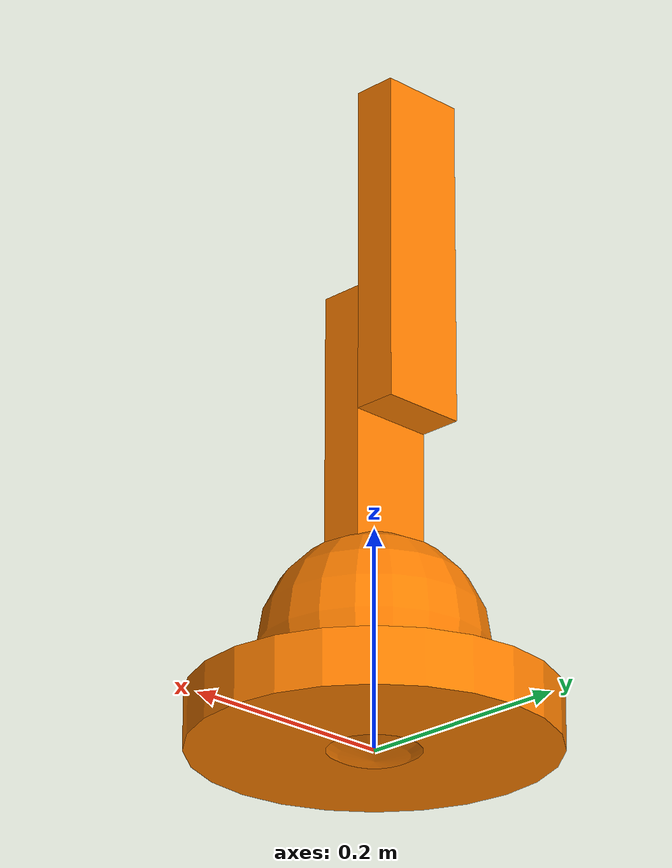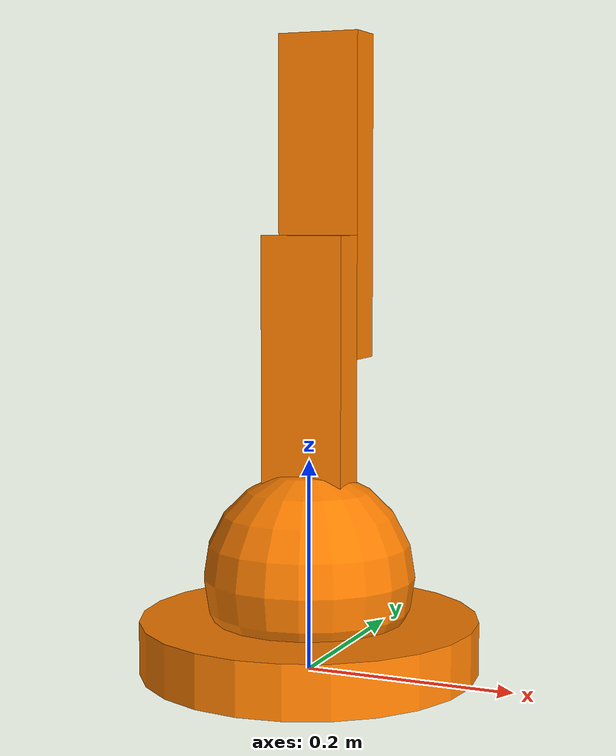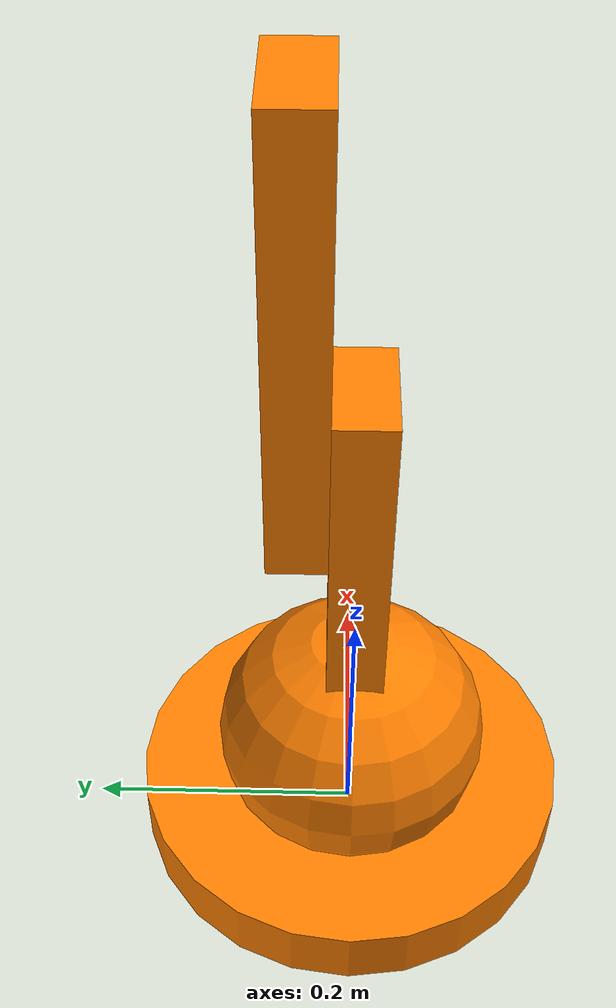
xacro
<?xml version ="1.0"?>

<robot name="agv_mini_manipulator" xmlns:xacro="http://www.ros.org/wiki/xacro">

    <xacro:include filename="$(find agv_mini_manipulator_description)/urdf/common_properties.xacro"/>
    <xacro:include filename="$(find agv_mini_manipulator_description)/urdf/common_hardware.xacro"/>

    <xacro:include filename="$(find agv_mini_manipulator_description)/urdf/manipulator/arm.xacro"/>
    <xacro:include filename="$(find agv_mini_manipulator_description)/urdf/manipulator/arm_gazebo.xacro"/>

</robot>

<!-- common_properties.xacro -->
<robot xmlns:xacro="http://www.ros.org/wiki/xacro">
    <!-- Materials -->
    <material name="blue">
        <color rgba="0 0 1 1"/>
    </material>

    <material name="black">
        <color rgba="0 0 0 1"/>
    </material>

    <material name="gray">
        <color rgba="0.5 0.5 0.5 1"/>
    </material>

    <material name="orange">
        <color rgba="1 0.5 0 1"/>
    </material>

    <!-- Common Xacros -->
    <xacro:macro name="box_inertia" params="m o_xyz o_rpy length width height">
            <inertial>
                <mass value="${m}"/>
                <origin xyz="${o_xyz}" rpy="${o_rpy}"/>
                <inertia ixx="${m /12 * (width**2 + height**2)}" ixy="0" ixz="0"
                         iyy="${m /12 * (length**2 + height**2)}" iyz="0"
                         izz="${m /12 * (length**2 + width**2)}"/>
            </inertial>
    </xacro:macro>

    <xacro:macro name="box_link" params="link_name m o_xyz o_rpy length width height material_name">
        <link name="${link_name}">
            <visual>
                <geometry>
                <box size="${length} ${width} ${height}"/>
                </geometry>
                <origin xyz="${o_xyz}" rpy="${o_rpy}"/>
                <material name="${material_name}"/>
            </visual>

            <collision>
                <geometry>
                <box size="${length} ${width} ${height}"/>
                </geometry>
                <origin xyz="${o_xyz}" rpy="${o_rpy}"/>
            </collision>

            <xacro:box_inertia m="${m}" o_xyz="${o_xyz}" o_rpy="${o_rpy}"
            length="${length}" width="${width}" height="${height}"/>
        </link>
    </xacro:macro>

    <xacro:macro name="cylinder_inertia" params="m radius length o_xyz o_rpy">
        <inertial>
            <mass value="${m}"/>
            <origin xyz="${o_xyz}" rpy="${o_rpy}"/>
            <inertia ixx="${m / 12 * (3*radius**2 + length**2)}" ixy="0" ixz="0"
                        iyy="${m / 12 * (3*radius**2 + length**2)}" iyz="0"
                        izz="${m / 2 * radius**2}"/>
        </inertial>
    </xacro:macro>

    <xacro:macro name="cylinder" params="link_name m o_xyz o_rpy radius length material_name">
        <link name="${link_name}">
            <visual>
                <geometry>
                    <cylinder radius="${radius}" length="${length}"/>
                </geometry>
                <origin xyz="${o_xyz}" rpy="${o_rpy}"/>
                <material name="${material_name}"/>
            </visual>

            <collision>
                <geometry>
                    <cylinder radius="${radius}" length="${length}"/>
                </geometry>
                <origin xyz="${o_xyz}" rpy="${o_rpy}"/>
            </collision>

            <xacro:cylinder_inertia
            m="${m}" radius="${radius}" length="${length}"
            o_xyz="${o_xyz}" o_rpy="${o_rpy}"/>
        </link>
    </xacro:macro>

    <xacro:macro name="sphere_inertia" params="m radius o_xyz o_rpy">
        <inertial>
            <mass value="${m}"/>
            <origin xyz="${o_xyz}" rpy="${o_rpy}"/>
            <inertia ixx="${2/5 * m * (radius)**2}" ixy="0" ixz="0"
                     iyy="${2/5 * m * (radius)**2}" iyz="0"
                     izz="${2/5 * m * (radius)**2}"/>
        </inertial>
    </xacro:macro>

    <xacro:macro name="sphere" params="link_name m o_xyz o_rpy radius material_name">
        <link name="${link_name}">
            <visual>
                <geometry>
                <sphere radius="${radius}"/>
                </geometry>
                <origin xyz="${o_xyz}" rpy="${o_rpy}"/>
                <material name="${material_name}"/>
            </visual>

            <collision>
                <geometry>
                <sphere radius="${radius}"/>
                </geometry>
                <origin xyz="${o_xyz}" rpy="${o_rpy}"/>
            </collision>

            <xacro:sphere_inertia
            m="${m}" radius="${radius}"
            o_xyz="${o_xyz}" o_rpy="${o_rpy}"/>
        </link>
    </xacro:macro>

    <!-- Joint Xacros -->
    <xacro:macro name="nonzero_inertia">
        <inertial>
            <mass value="0.0001"/>
            <origin xyz="0 0 0" rpy="0 0 0"/>
            <inertia ixx="1e-9" ixy="0" ixz="0"
                     iyy="1e-9" iyz="0"
                     izz="1e-9"/>
        </inertial>
    </xacro:macro>

    <xacro:macro name="three_axis_joint" params="prefix parent_link">
        <link name="${prefix}_link_x">
            <xacro:nonzero_inertia/>
        </link>
        <joint name="${prefix}_joint_x" type="continuous">
            <parent link="${parent_link}"/>
            <child link="${prefix}_link_x"/>
            <origin xyz="0 0 0" rpy="0 0 0"/>
            <axis xyz="1 0 0"/>
        </joint>

        <link name="${prefix}_link_y">
            <xacro:nonzero_inertia/>
        </link>
        <joint name="${prefix}_joint_y" type="continuous">
            <parent link="${prefix}_link_x"/>
            <child link="${prefix}_link_y"/>
            <origin xyz="0 0 0" rpy="0 0 0"/>
            <axis xyz="0 1 0"/>
        </joint>

        <link name="${prefix}_link_z">
            <xacro:nonzero_inertia/>
        </link>
        <joint name="${prefix}_joint_z" type="continuous">
            <parent link="${prefix}_link_y"/>
            <child link="${prefix}_link_z"/>
            <origin xyz="0 0 0" rpy="0 0 0"/>
            <axis xyz="0 0 1"/>
        </joint>
    </xacro:macro>

</robot>

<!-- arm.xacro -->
<robot xmlns:xacro="http://www.ros.org/wiki/xacro">

    <!-- Variables -->
    <xacro:property name="manipulator_link_width" value="0.08"/>
    <xacro:property name="manipulator_link_thickness" value="0.04"/>
    <xacro:property name="manipulator_joint_offset" value="0.04"/>

    <xacro:property name="q0_height" value="0.05"/>
    <xacro:property name="q0_limit_lower" value="${-3*pi / 4.0}"/>
    <xacro:property name="q0_limit_upper" value="${3*pi / 4.0}"/>
    <xacro:property name="q0_limit_effort" value="100"/>
    <xacro:property name="q0_limit_velocity" value="100.0"/>
    <xacro:property name="q0_friction" value="0.3"/>
    <xacro:property name="q0_damping" value="0.3"/>

    <xacro:property name="q1_length" value="0.3"/>
    <xacro:property name="q1_limit_lower" value="${-pi / 4.0}"/>
    <xacro:property name="q1_limit_upper" value="${pi / 2.0}"/>
    <xacro:property name="q1_limit_effort" value="100"/>
    <xacro:property name="q1_limit_velocity" value="100.0"/>
    <xacro:property name="q1_friction" value="0.3"/>
    <xacro:property name="q1_damping" value="0.3"/>

    <xacro:property name="q2_length" value="0.264"/>
    <xacro:property name="q2_limit_lower" value="${-3*pi / 4.0}"/>
    <xacro:property name="q2_limit_upper" value="${3*pi / 4.0}"/>
    <xacro:property name="q2_limit_effort" value="100"/>
    <xacro:property name="q2_limit_velocity" value="100.0"/>
    <xacro:property name="q2_friction" value="0.3"/>
    <xacro:property name="q2_damping" value="0.3"/>

    <!-- arm_base_link -->
    <xacro:cylinder link_name="arm_base_link" m="1.0" o_xyz="0 0 ${q0_height / 2.0}"
    o_rpy="0 0 0" radius="0.16" length="${q0_height}" material_name="orange"/>
    <!-- arm_base_link -->

    <xacro:sphere link_name="q0_link" m="0.75" o_xyz="0 0 0" o_rpy="0 0 0"
    radius="0.1" material_name="orange"/>

    <joint name="q0" type="revolute">
        <parent link="arm_base_link"/>
        <child link="q0_link"/>
        <origin xyz="0 0 ${q0_height + manipulator_link_width / 2.0}" rpy="0 0 0"/>
        <axis xyz="0 0 1"/>
        <limit lower="${q0_limit_lower}" upper="${q0_limit_upper}"
        effort="${q0_limit_effort}" velocity="${q0_limit_velocity}"/>
        <dynamics damping="${q0_damping}" friction="${q0_friction}"/>
    </joint>

    <xacro:box_link link_name="q1_link" m="0.5" o_xyz="${q1_length / 2.0} 0 0"
    o_rpy="0 0 0" length="${q1_length + manipulator_joint_offset}" width="${manipulator_link_width}"
    height="${manipulator_link_thickness}" material_name="orange"/>

    <joint name="q1" type="revolute">
        <parent link="q0_link"/>
        <child link="q1_link"/>
        <origin xyz="0 0 0" rpy="${-pi / 2.0} ${-pi / 2.0} 0"/>
        <axis xyz="0 0 1"/>
        <limit lower="${q1_limit_lower}" upper="${q1_limit_upper}"
        effort="${q1_limit_effort}" velocity="${q1_limit_velocity}"/>
        <dynamics damping="${q1_damping}" friction="${q1_friction}"/>
    </joint>

    <xacro:box_link link_name="q2_link" m="0.5" o_xyz="${q2_length / 2.0} 0 0"
    o_rpy="0 0 0" length="${q2_length + manipulator_joint_offset}" width="${manipulator_link_width}"
    height="${manipulator_link_thickness}" material_name="orange"/>

    <joint name="q2" type="revolute">
        <parent link="q1_link"/>
        <child link="q2_link"/>
        <origin xyz="${q2_length - manipulator_joint_offset} 0 ${manipulator_link_thickness}"
        rpy="0 0 0"/>
        <axis xyz="0 0 1"/>
        <limit lower="${q2_limit_lower}" upper="${q2_limit_upper}"
        effort="${q2_limit_effort}" velocity="${q2_limit_velocity}"/>
        <dynamics damping="${q2_damping}" friction="${q2_friction}"/>
    </joint>

</robot>
